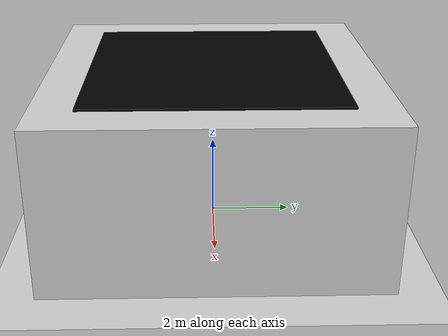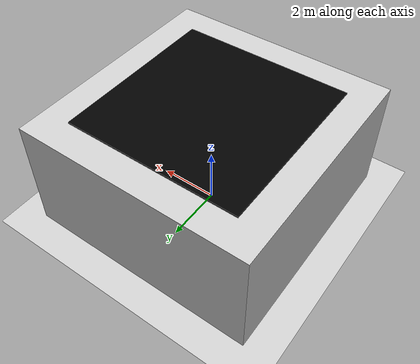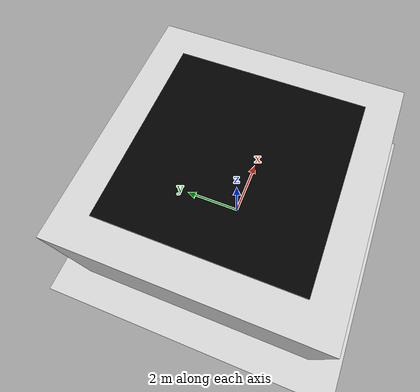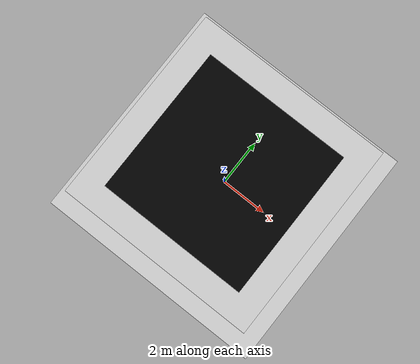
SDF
<sdf version="1.7">
 <world name="unity_export_world">
  <include><uri>model://ground_plane</uri></include>
  <include><uri>model://sun</uri></include>
  <model name="room_walls">
   <pose>0 0 2 0 0 0</pose>
   <link name="room_link">
    <visual name="room_visual">
     <geometry><box><size>8 8 4</size></box></geometry>
     <material><ambient>0.8 0.8 0.8 1</ambient><diffuse>0.8 0.8 0.8 1</diffuse></material>
    </visual>
    <collision name="room_collision"><geometry><box><size>8 8 4</size></box></geometry></collision>
    <inertial>
     <mass>1000.0</mass>
     <inertia><ixx>1000.0</ixx><ixy>0</ixy><ixz>0</ixz><iyy>1000.0</iyy><iyz>0</iyz><izz>1000.0</izz></inertia>
    </inertial>
   </link>
  </model>
  <model name="room_with_hole">
   <pose>0 0 2 0 0 0</pose>
   <link name="outer_wall">
    <visual name="outer_visual"><geometry><box><size>8 8 4</size></box></geometry></visual>
    <collision name="outer_collision"><geometry><box><size>8 8 4</size></box></geometry></collision>
   </link>
   <link name="inner_cutout">
    <visual name="inner_visual">
     <geometry><box><size>6 6 4.1</size></box></geometry>
     <material><ambient>0 0 0 0</ambient><diffuse>0 0 0 0</diffuse></material>
    </visual>
    <collision name="inner_collision"><geometry><box><size>6 6 4.1</size></box></geometry></collision>
   </link>
   <joint name="cutout_joint" type="fixed"><parent>outer_wall</parent><child>inner_cutout</child></joint>
  </model>
  <model name="table">
   <pose>-2 -1 0.4 0 0 0</pose>
   <link name="table_top">
    <visual name="table_visual">
     <geometry><box><size>1.5 0.8 0.05</size></box></geometry>
     <material><ambient>0.6 0.4 0.2 1</ambient><diffuse>0.6 0.4 0.2 1</diffuse></material>
    </visual>
    <collision name="table_collision"><geometry><box><size>1.5 0.8 0.05</size></box></geometry></collision>
    <inertial>
     <mass>10.0</mass>
     <inertia><ixx>0.5</ixx><ixy>0</ixy><ixz>0</ixz><iyy>1.0</iyy><iyz>0</iyz><izz>1.2</izz></inertia>
    </inertial>
   </link>
   <link name="leg1">
    <visual name="leg1_visual">
     <geometry><box><size>0.05 0.05 0.7</size></box></geometry>
     <material><ambient>0.4 0.2 0.1 1</ambient><diffuse>0.4 0.2 0.1</diffuse></material>
    </visual>
    <collision name="leg1_collision"><geometry><box><size>0.05 0.05 0.7</size></box></geometry></collision>
    <inertial>
     <mass>1.0</mass>
     <inertia><ixx>0.01</ixx><ixy>0</ixy><ixz>0</ixz><iyy>0.01</iyy><iyz>0</iyz><izz>0.001</izz></inertia>
    </inertial>
   </link>
   <joint name="leg1_joint" type="fixed">
    <parent>table_top</parent>
    <child>leg1</child>
    <origin xyz="0.7 0.35 -0.375" rpy="0 0 0"/>
   </joint>
  </model>
  <model name="cup">
   <pose>-2.2 -1.1 0.45 0 0 0</pose>
   <link name="cup_link">
    <visual name="cup_visual">
     <geometry><cylinder><radius>0.05</radius><length>0.1</length></cylinder></geometry>
     <material><ambient>0.8 0.8 0.9 1</ambient><diffuse>0.8 0.8 0.9</diffuse></material>
    </visual>
    <collision name="cup_collision">
     <geometry><cylinder><radius>0.05</radius><length>0.1</length></cylinder></geometry>
    </collision>
    <inertial>
     <mass>0.1</mass>
     <inertia><ixx>0.0001</ixx><ixy>0</ixy><ixz>0</ixz><iyy>0.0001</iyy><iyz>0</iyz><izz>0.000025</izz></inertia>
    </inertial>
   </link>
  </model>
 </world>
</sdf>
